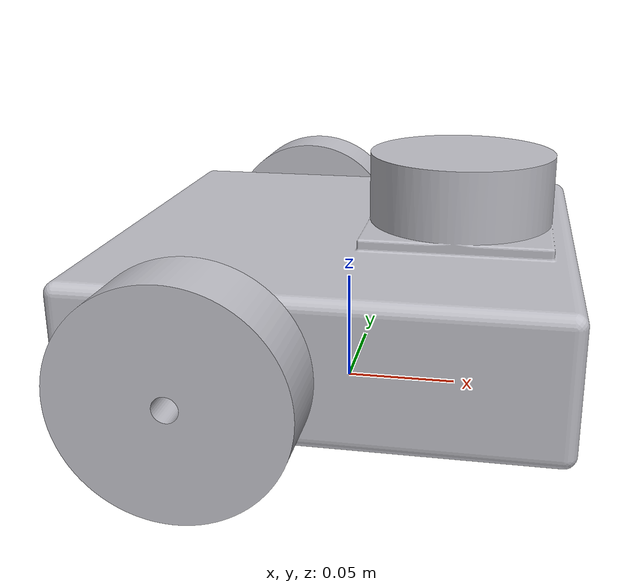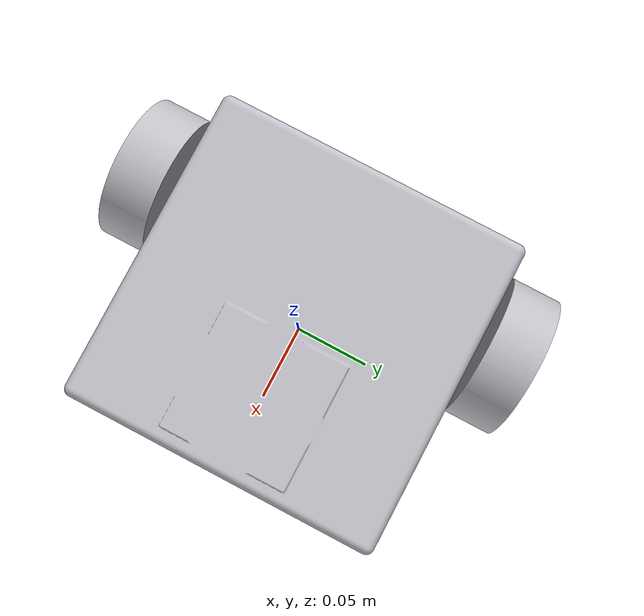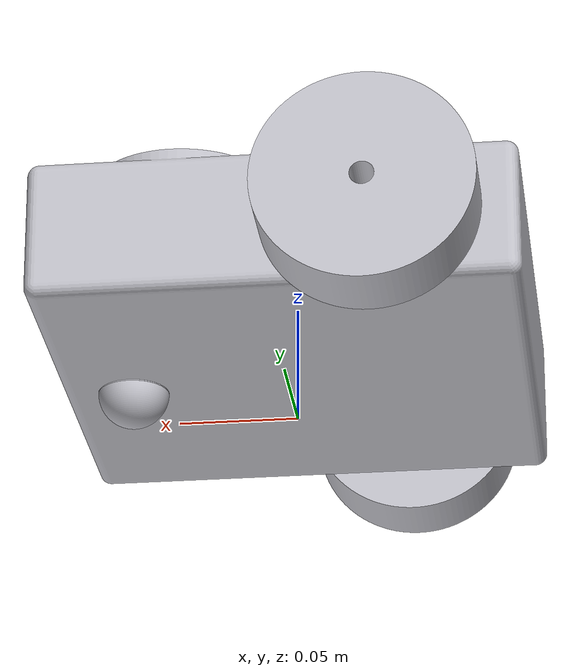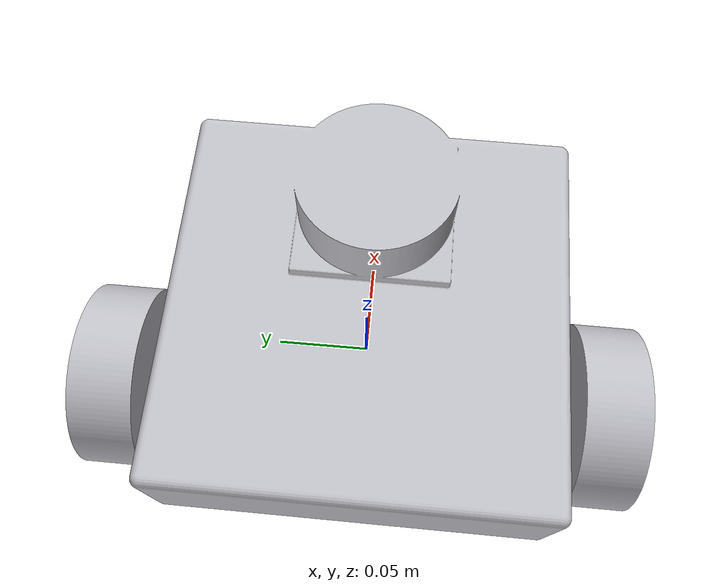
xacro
<?xml version="1.0" ?>
<robot name="Ranger" xmlns:xacro="http://www.ros.org/wiki/xacro">

    <link name="base_link">
        <inertial>
            <origin xyz="0.0035546665659326455 -1.413441635704636e-17 0.048329276632124316" rpy="0 0 0"/>
            <mass value="20.204678363979987"/>
            <inertia ixx="0.071598" iyy="0.074917" izz="0.129142" ixy="0.0" iyz="-0.0" ixz="-0.003123"/>
        </inertial>
        <visual>
            <origin xyz="0 0 0" rpy="0 0 0"/>
            <geometry>
            <mesh filename="package://ranger/meshes/base_link.stl" scale="0.001 0.001 0.001"/>
            </geometry>
            <material name="silver"/>
        </visual>
        <collision>
            <origin xyz="0 0 0" rpy="0 0 0"/>
            <geometry>
            <mesh filename="package://ranger/meshes/base_link.stl" scale="0.001 0.001 0.001"/>
            </geometry>
        </collision>
    </link>

    <link name="right_wheel_link_1">
        <inertial>
            <origin xyz="-5.842548667089886e-15 -0.015000000000000027 2.8171909249863347e-15" rpy="0 0 0"/>
            <mass value="1.4796901398407913"/>
            <inertia ixx="0.000869" iyy="0.001517" izz="0.000869" ixy="0.0" iyz="-0.0" ixz="-0.0"/>
        </inertial>
        <visual>
            <origin xyz="0.04 0.1025 -0.045" rpy="0 0 0"/>
            <geometry>
            <mesh filename="package://ranger/meshes/right_wheel_link_1.stl" scale="0.001 0.001 0.001"/>
            </geometry>
            <material name="silver"/>
        </visual>
        <collision>
            <origin xyz="0.04 0.1025 -0.045" rpy="0 0 0"/>
            <geometry>
            <mesh filename="package://ranger/meshes/right_wheel_link_1.stl" scale="0.001 0.001 0.001"/>
            </geometry>
        </collision>
    </link>

    <link name="left_wheel_link_1">
        <inertial>
            <origin xyz="8.326672684688674e-16 0.015000000000000027 -6.168676680573526e-15" rpy="0 0 0"/>
            <mass value="1.4796901398407913"/>
            <inertia ixx="0.000869" iyy="0.001517" izz="0.000869" ixy="-0.0" iyz="0.0" ixz="-0.0"/>
        </inertial>
        <visual>
            <origin xyz="0.04 -0.1025 -0.045" rpy="0 0 0"/>
            <geometry>
            <mesh filename="package://ranger/meshes/left_wheel_link_1.stl" scale="0.001 0.001 0.001"/>
            </geometry>
            <material name="silver"/>
        </visual>
        <collision>
            <origin xyz="0.04 -0.1025 -0.045" rpy="0 0 0"/>
            <geometry>
            <mesh filename="package://ranger/meshes/left_wheel_link_1.stl" scale="0.001 0.001 0.001"/>
            </geometry>
        </collision>
    </link>

    <link name="castor_wheel_link_1">
        <inertial>
            <origin xyz="0.0 -5.2835126755093754e-18 -0.0054087491770349536" rpy="0 0 0"/>
            <mass value="0.05278458497479655"/>
            <inertia ixx="3e-06" iyy="3e-06" izz="5e-06" ixy="-0.0" iyz="-0.0" ixz="0.0"/>
        </inertial>
        <visual>
            <origin xyz="-0.07 -0.0 -0.0145" rpy="0 0 0"/>
            <geometry>
            <mesh filename="package://ranger/meshes/castor_wheel_link_1.stl" scale="0.001 0.001 0.001"/>
            </geometry>
            <material name="silver"/>
        </visual>
        <collision>
            <origin xyz="-0.07 -0.0 -0.0145" rpy="0 0 0"/>
            <geometry>
            <mesh filename="package://ranger/meshes/castor_wheel_link_1.stl" scale="0.001 0.001 0.001"/>
            </geometry>
        </collision>
    </link>

    <joint name="right_wheel_joint" type="continuous">
        <origin xyz="-0.04 -0.1025 0.045" rpy="0 0 0"/>
        <parent link="base_link"/>
        <child link="right_wheel_link_1"/>
        <axis xyz="0.0 1.0 0.0"/>
    </joint>

    <joint name="left_wheel_joint" type="continuous">
        <origin xyz="-0.04 0.1025 0.045" rpy="0 0 0"/>
        <parent link="base_link"/>
        <child link="left_wheel_link_1"/>
        <axis xyz="0.0 1.0 0.0"/>
    </joint>

    <joint name="castor_wheel_joint" type="fixed">
        <origin xyz="0.07 0.0 0.0145" rpy="0 0 0"/>
        <parent link="base_link"/>
        <child link="castor_wheel_link_1"/>
    </joint>

</robot>
